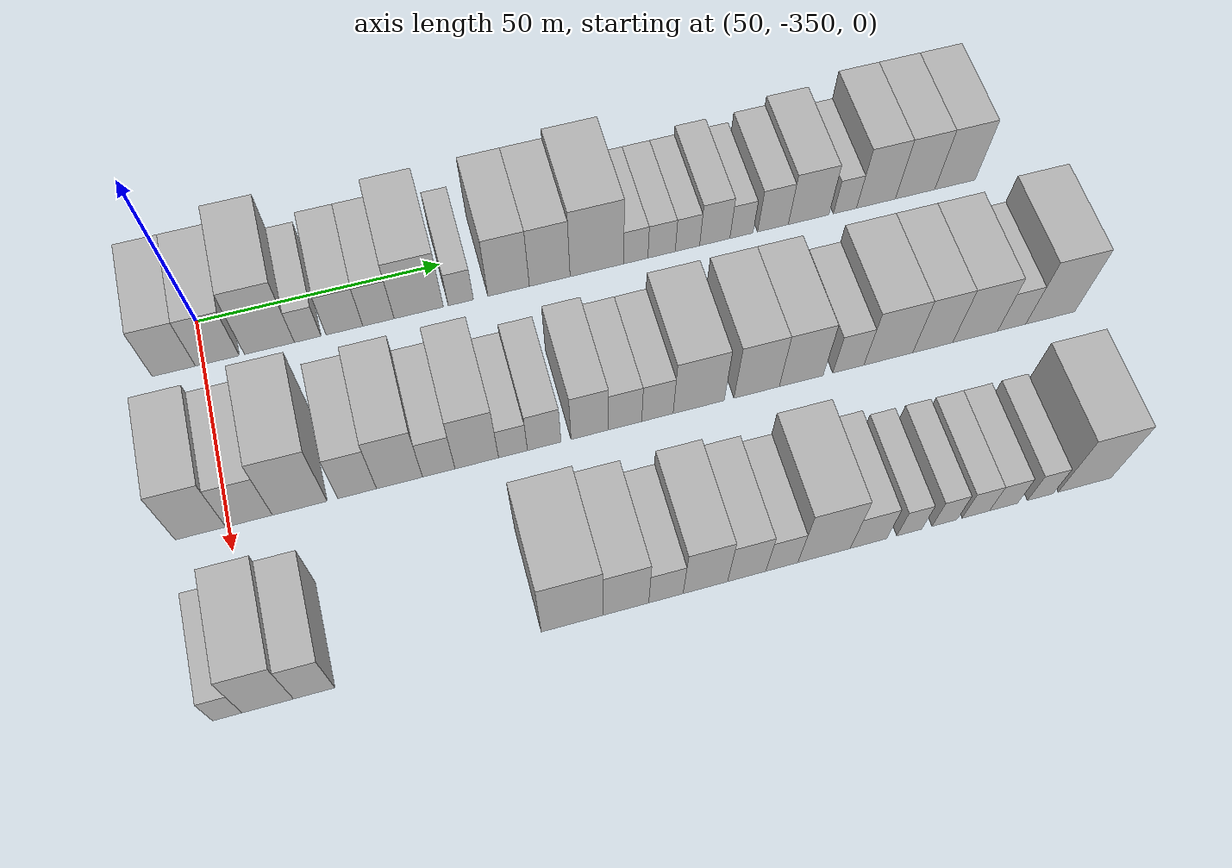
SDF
<sdf version="1.6">
 <world name="default">
  <model name="building_1">
   <static>1</static>
   <pose>50.0000 -355.7327 0 0.000000 0.000000 0.000000</pose>
   <link name="link">
    <pose>0 0 9.00 0 0 0</pose>
    <collision name="collision"><geometry><box><size>20.0000 8.5347 18.0000</size></box></geometry></collision>
    <visual name="visual">
     <cast_shadows>0</cast_shadows>
     <geometry><box><size>20.0000 8.5347 18.0000</size></box></geometry>
     <material>
      <script>
       <uri>model://HANNAS_wall/materials/scripts</uri>
       <uri>model://HANNAS_wall/materials/textures</uri>
       <name>vrc/HANNAS_wall</name>
      </script>
     </material>
    </visual>
   </link>
  </model>
  <model name="building_2">
   <static>1</static>
   <pose>50.0000 -347.1133 0 0.000000 0.000000 0.000000</pose>
   <link name="link">
    <pose>0 0 9.00 0 0 0</pose>
    <collision name="collision"><geometry><box><size>20.0000 8.7041 18.0000</size></box></geometry></collision>
    <visual name="visual">
     <cast_shadows>0</cast_shadows>
     <geometry><box><size>20.0000 8.7041 18.0000</size></box></geometry>
     <material>
      <script>
       <uri>model://HANNAS_wall/materials/scripts</uri>
       <uri>model://HANNAS_wall/materials/textures</uri>
       <name>vrc/HANNAS_wall</name>
      </script>
     </material>
    </visual>
   </link>
  </model>
  <model name="building_3">
   <static>1</static>
   <pose>50.0000 -336.7683 0 0.000000 0.000000 0.000000</pose>
   <link name="link">
    <pose>0 0 12.00 0 0 0</pose>
    <collision name="collision"><geometry><box><size>20.0000 9.9859 24.0000</size></box></geometry></collision>
    <visual name="visual">
     <cast_shadows>0</cast_shadows>
     <geometry><box><size>20.0000 9.9859 24.0000</size></box></geometry>
     <material>
      <script>
       <uri>model://HANNAS_wall/materials/scripts</uri>
       <uri>model://HANNAS_wall/materials/textures</uri>
       <name>vrc/HANNAS_wall</name>
      </script>
     </material>
    </visual>
   </link>
  </model>
  <model name="building_4">
   <static>1</static>
   <pose>50.0000 -329.0870 0 0.000000 0.000000 0.000000</pose>
   <link name="link">
    <pose>0 0 6.00 0 0 0</pose>
    <collision name="collision"><geometry><box><size>20.0000 5.3767 12.0000</size></box></geometry></collision>
    <visual name="visual">
     <cast_shadows>0</cast_shadows>
     <geometry><box><size>20.0000 5.3767 12.0000</size></box></geometry>
     <material>
      <script>
       <uri>model://HANNAS_wall/materials/scripts</uri>
       <uri>model://HANNAS_wall/materials/textures</uri>
       <name>vrc/HANNAS_wall</name>
      </script>
     </material>
    </visual>
   </link>
  </model>
  <model name="building_5">
   <static>1</static>
   <pose>50.0000 -321.6706 0 0.000000 0.000000 0.000000</pose>
   <link name="link">
    <pose>0 0 7.50 0 0 0</pose>
    <collision name="collision"><geometry><box><size>20.0000 7.4561 15.0000</size></box></geometry></collision>
    <visual name="visual">
     <cast_shadows>0</cast_shadows>
     <geometry><box><size>20.0000 7.4561 15.0000</size></box></geometry>
     <material>
      <script>
       <uri>model://HANNAS_wall/materials/scripts</uri>
       <uri>model://HANNAS_wall/materials/textures</uri>
       <name>vrc/HANNAS_wall</name>
      </script>
     </material>
    </visual>
   </link>
  </model>
  <model name="building_6">
   <static>1</static>
   <pose>50.0000 -314.7482 0 0.000000 0.000000 0.000000</pose>
   <link name="link">
    <pose>0 0 7.50 0 0 0</pose>
    <collision name="collision"><geometry><box><size>20.0000 6.3887 15.0000</size></box></geometry></collision>
    <visual name="visual">
     <cast_shadows>0</cast_shadows>
     <geometry><box><size>20.0000 6.3887 15.0000</size></box></geometry>
     <material>
      <script>
       <uri>model://HANNAS_wall/materials/scripts</uri>
       <uri>model://HANNAS_wall/materials/textures</uri>
       <name>vrc/HANNAS_wall</name>
      </script>
     </material>
    </visual>
   </link>
  </model>
  <model name="building_7">
   <static>1</static>
   <pose>50.0000 -306.4963 0 0.000000 0.000000 0.000000</pose>
   <link name="link">
    <pose>0 0 10.50 0 0 0</pose>
    <collision name="collision"><geometry><box><size>20.0000 10.1150 21.0000</size></box></geometry></collision>
    <visual name="visual">
     <cast_shadows>0</cast_shadows>
     <geometry><box><size>20.0000 10.1150 21.0000</size></box></geometry>
     <material>
      <script>
       <uri>model://HANNAS_wall/materials/scripts</uri>
       <uri>model://HANNAS_wall/materials/textures</uri>
       <name>vrc/HANNAS_wall</name>
      </script>
     </material>
    </visual>
   </link>
  </model>
  <model name="building_8">
   <static>1</static>
   <pose>50.0000 -297.8354 0 0.000000 0.000000 0.000000</pose>
   <link name="link">
    <pose>0 0 6.00 0 0 0</pose>
    <collision name="collision"><geometry><box><size>20.0000 5.2068 12.0000</size></box></geometry></collision>
    <visual name="visual">
     <cast_shadows>0</cast_shadows>
     <geometry><box><size>20.0000 5.2068 12.0000</size></box></geometry>
     <material>
      <script>
       <uri>model://HANNAS_wall/materials/scripts</uri>
       <uri>model://HANNAS_wall/materials/textures</uri>
       <name>vrc/HANNAS_wall</name>
      </script>
     </material>
    </visual>
   </link>
  </model>
  <model name="building_9">
   <static>1</static>
   <pose>50.0000 -287.9012 0 0.000000 0.000000 0.000000</pose>
   <link name="link">
    <pose>0 0 10.50 0 0 0</pose>
    <collision name="collision"><geometry><box><size>20.0000 8.6617 21.0000</size></box></geometry></collision>
    <visual name="visual">
     <cast_shadows>0</cast_shadows>
     <geometry><box><size>20.0000 8.6617 21.0000</size></box></geometry>
     <material>
      <script>
       <uri>model://HANNAS_wall/materials/scripts</uri>
       <uri>model://HANNAS_wall/materials/textures</uri>
       <name>vrc/HANNAS_wall</name>
      </script>
     </material>
    </visual>
   </link>
  </model>
  <model name="building_10">
   <static>1</static>
   <pose>50.0000 -279.2929 0 0.000000 0.000000 0.000000</pose>
   <link name="link">
    <pose>0 0 10.50 0 0 0</pose>
    <collision name="collision"><geometry><box><size>20.0000 8.5549 21.0000</size></box></geometry></collision>
    <visual name="visual">
     <cast_shadows>0</cast_shadows>
     <geometry><box><size>20.0000 8.5549 21.0000</size></box></geometry>
     <material>
      <script>
       <uri>model://HANNAS_wall/materials/scripts</uri>
       <uri>model://HANNAS_wall/materials/textures</uri>
       <name>vrc/HANNAS_wall</name>
      </script>
     </material>
    </visual>
   </link>
  </model>
  <model name="building_11">
   <static>1</static>
   <pose>50.0000 -269.3583 0 0.000000 0.000000 0.000000</pose>
   <link name="link">
    <pose>0 0 12.00 0 0 0</pose>
    <collision name="collision"><geometry><box><size>20.0000 11.3145 24.0000</size></box></geometry></collision>
    <visual name="visual">
     <cast_shadows>0</cast_shadows>
     <geometry><box><size>20.0000 11.3145 24.0000</size></box></geometry>
     <material>
      <script>
       <uri>model://HANNAS_wall/materials/scripts</uri>
       <uri>model://HANNAS_wall/materials/textures</uri>
       <name>vrc/HANNAS_wall</name>
      </script>
     </material>
    </visual>
   </link>
  </model>
  <model name="building_12">
   <static>1</static>
   <pose>50.0000 -261.0914 0 0.000000 0.000000 0.000000</pose>
   <link name="link">
    <pose>0 0 6.00 0 0 0</pose>
    <collision name="collision"><geometry><box><size>20.0000 5.2192 12.0000</size></box></geometry></collision>
    <visual name="visual">
     <cast_shadows>0</cast_shadows>
     <geometry><box><size>20.0000 5.2192 12.0000</size></box></geometry>
     <material>
      <script>
       <uri>model://HANNAS_wall/materials/scripts</uri>
       <uri>model://HANNAS_wall/materials/textures</uri>
       <name>vrc/HANNAS_wall</name>
      </script>
     </material>
    </visual>
   </link>
  </model>
  <model name="building_13">
   <static>1</static>
   <pose>50.0000 -255.5470 0 0.000000 0.000000 0.000000</pose>
   <link name="link">
    <pose>0 0 6.00 0 0 0</pose>
    <collision name="collision"><geometry><box><size>20.0000 5.8696 12.0000</size></box></geometry></collision>
    <visual name="visual">
     <cast_shadows>0</cast_shadows>
     <geometry><box><size>20.0000 5.8696 12.0000</size></box></geometry>
     <material>
      <script>
       <uri>model://HANNAS_wall/materials/scripts</uri>
       <uri>model://HANNAS_wall/materials/textures</uri>
       <name>vrc/HANNAS_wall</name>
      </script>
     </material>
    </visual>
   </link>
  </model>
  <model name="building_14">
   <static>1</static>
   <pose>50.0000 -249.9911 0 0.000000 0.000000 0.000000</pose>
   <link name="link">
    <pose>0 0 6.00 0 0 0</pose>
    <collision name="collision"><geometry><box><size>20.0000 5.2421 12.0000</size></box></geometry></collision>
    <visual name="visual">
     <cast_shadows>0</cast_shadows>
     <geometry><box><size>20.0000 5.2421 12.0000</size></box></geometry>
     <material>
      <script>
       <uri>model://HANNAS_wall/materials/scripts</uri>
       <uri>model://HANNAS_wall/materials/textures</uri>
       <name>vrc/HANNAS_wall</name>
      </script>
     </material>
    </visual>
   </link>
  </model>
  <model name="building_15">
   <static>1</static>
   <pose>50.0000 -244.0857 0 0.000000 0.000000 0.000000</pose>
   <link name="link">
    <pose>0 0 7.50 0 0 0</pose>
    <collision name="collision"><geometry><box><size>20.0000 6.5687 15.0000</size></box></geometry></collision>
    <visual name="visual">
     <cast_shadows>0</cast_shadows>
     <geometry><box><size>20.0000 6.5687 15.0000</size></box></geometry>
     <material>
      <script>
       <uri>model://HANNAS_wall/materials/scripts</uri>
       <uri>model://HANNAS_wall/materials/textures</uri>
       <name>vrc/HANNAS_wall</name>
      </script>
     </material>
    </visual>
   </link>
  </model>
  <model name="building_16">
   <static>1</static>
   <pose>50.0000 -238.2867 0 0.000000 0.000000 0.000000</pose>
   <link name="link">
    <pose>0 0 6.00 0 0 0</pose>
    <collision name="collision"><geometry><box><size>20.0000 5.0294 12.0000</size></box></geometry></collision>
    <visual name="visual">
     <cast_shadows>0</cast_shadows>
     <geometry><box><size>20.0000 5.0294 12.0000</size></box></geometry>
     <material>
      <script>
       <uri>model://HANNAS_wall/materials/scripts</uri>
       <uri>model://HANNAS_wall/materials/textures</uri>
       <name>vrc/HANNAS_wall</name>
      </script>
     </material>
    </visual>
   </link>
  </model>
  <model name="building_17">
   <static>1</static>
   <pose>50.0000 -231.4063 0 0.000000 0.000000 0.000000</pose>
   <link name="link">
    <pose>0 0 7.50 0 0 0</pose>
    <collision name="collision"><geometry><box><size>20.0000 6.7313 15.0000</size></box></geometry></collision>
    <visual name="visual">
     <cast_shadows>0</cast_shadows>
     <geometry><box><size>20.0000 6.7313 15.0000</size></box></geometry>
     <material>
      <script>
       <uri>model://HANNAS_wall/materials/scripts</uri>
       <uri>model://HANNAS_wall/materials/textures</uri>
       <name>vrc/HANNAS_wall</name>
      </script>
     </material>
    </visual>
   </link>
  </model>
  <model name="building_18">
   <static>1</static>
   <pose>50.0000 -223.5605 0 0.000000 0.000000 0.000000</pose>
   <link name="link">
    <pose>0 0 9.00 0 0 0</pose>
    <collision name="collision"><geometry><box><size>20.0000 8.9602 18.0000</size></box></geometry></collision>
    <visual name="visual">
     <cast_shadows>0</cast_shadows>
     <geometry><box><size>20.0000 8.9602 18.0000</size></box></geometry>
     <material>
      <script>
       <uri>model://HANNAS_wall/materials/scripts</uri>
       <uri>model://HANNAS_wall/materials/textures</uri>
       <name>vrc/HANNAS_wall</name>
      </script>
     </material>
    </visual>
   </link>
  </model>
  <model name="building_19">
   <static>1</static>
   <pose>50.0000 -215.5207 0 0.000000 0.000000 0.000000</pose>
   <link name="link">
    <pose>0 0 6.00 0 0 0</pose>
    <collision name="collision"><geometry><box><size>20.0000 5.1194 12.0000</size></box></geometry></collision>
    <visual name="visual">
     <cast_shadows>0</cast_shadows>
     <geometry><box><size>20.0000 5.1194 12.0000</size></box></geometry>
     <material>
      <script>
       <uri>model://HANNAS_wall/materials/scripts</uri>
       <uri>model://HANNAS_wall/materials/textures</uri>
       <name>vrc/HANNAS_wall</name>
      </script>
     </material>
    </visual>
   </link>
  </model>
  <model name="building_20">
   <static>1</static>
   <pose>50.0000 -208.6274 0 0.000000 0.000000 0.000000</pose>
   <link name="link">
    <pose>0 0 10.50 0 0 0</pose>
    <collision name="collision"><geometry><box><size>20.0000 8.6672 21.0000</size></box></geometry></collision>
    <visual name="visual">
     <cast_shadows>0</cast_shadows>
     <geometry><box><size>20.0000 8.6672 21.0000</size></box></geometry>
     <material>
      <script>
       <uri>model://HANNAS_wall/materials/scripts</uri>
       <uri>model://HANNAS_wall/materials/textures</uri>
       <name>vrc/HANNAS_wall</name>
      </script>
     </material>
    </visual>
   </link>
  </model>
  <model name="building_21">
   <static>1</static>
   <pose>50.0000 -199.8537 0 0.000000 0.000000 0.000000</pose>
   <link name="link">
    <pose>0 0 10.50 0 0 0</pose>
    <collision name="collision"><geometry><box><size>20.0000 8.8801 21.0000</size></box></geometry></collision>
    <visual name="visual">
     <cast_shadows>0</cast_shadows>
     <geometry><box><size>20.0000 8.8801 21.0000</size></box></geometry>
     <material>
      <script>
       <uri>model://HANNAS_wall/materials/scripts</uri>
       <uri>model://HANNAS_wall/materials/textures</uri>
       <name>vrc/HANNAS_wall</name>
      </script>
     </material>
    </visual>
   </link>
  </model>
  <model name="building_22">
   <static>1</static>
   <pose>50.0000 -190.8457 0 0.000000 0.000000 0.000000</pose>
   <link name="link">
    <pose>0 0 10.50 0 0 0</pose>
    <collision name="collision"><geometry><box><size>20.0000 9.1359 21.0000</size></box></geometry></collision>
    <visual name="visual">
     <cast_shadows>0</cast_shadows>
     <geometry><box><size>20.0000 9.1359 21.0000</size></box></geometry>
     <material>
      <script>
       <uri>model://HANNAS_wall/materials/scripts</uri>
       <uri>model://HANNAS_wall/materials/textures</uri>
       <name>vrc/HANNAS_wall</name>
      </script>
     </material>
    </visual>
   </link>
  </model>
  <model name="building_78">
   <static>1</static>
   <pose>85.0000 -355.2807 0 0.000000 0.000000 0.000000</pose>
   <link name="link">
    <pose>0 0 10.50 0 0 0</pose>
    <collision name="collision"><geometry><box><size>20.0000 9.4386 21.0000</size></box></geometry></collision>
    <visual name="visual">
     <cast_shadows>0</cast_shadows>
     <geometry><box><size>20.0000 9.4386 21.0000</size></box></geometry>
     <material>
      <script>
       <uri>model://HANNAS_wall/materials/scripts</uri>
       <uri>model://HANNAS_wall/materials/textures</uri>
       <name>vrc/HANNAS_wall</name>
      </script>
     </material>
    </visual>
   </link>
  </model>
  <model name="building_79">
   <static>1</static>
   <pose>85.0000 -346.1865 0 0.000000 0.000000 0.000000</pose>
   <link name="link">
    <pose>0 0 9.00 0 0 0</pose>
    <collision name="collision"><geometry><box><size>20.0000 8.7498 18.0000</size></box></geometry></collision>
    <visual name="visual">
     <cast_shadows>0</cast_shadows>
     <geometry><box><size>20.0000 8.7498 18.0000</size></box></geometry>
     <material>
      <script>
       <uri>model://HANNAS_wall/materials/scripts</uri>
       <uri>model://HANNAS_wall/materials/textures</uri>
       <name>vrc/HANNAS_wall</name>
      </script>
     </material>
    </visual>
   </link>
  </model>
  <model name="building_80">
   <static>1</static>
   <pose>85.0000 -336.6284 0 0.000000 0.000000 0.000000</pose>
   <link name="link">
    <pose>0 0 12.00 0 0 0</pose>
    <collision name="collision"><geometry><box><size>20.0000 10.3663 24.0000</size></box></geometry></collision>
    <visual name="visual">
     <cast_shadows>0</cast_shadows>
     <geometry><box><size>20.0000 10.3663 24.0000</size></box></geometry>
     <material>
      <script>
       <uri>model://HANNAS_wall/materials/scripts</uri>
       <uri>model://HANNAS_wall/materials/textures</uri>
       <name>vrc/HANNAS_wall</name>
      </script>
     </material>
    </visual>
   </link>
  </model>
  <model name="building_81">
   <static>1</static>
   <pose>85.0000 -325.7325 0 0.000000 0.000000 0.000000</pose>
   <link name="link">
    <pose>0 0 9.00 0 0 0</pose>
    <collision name="collision"><geometry><box><size>20.0000 7.4255 18.0000</size></box></geometry></collision>
    <visual name="visual">
     <cast_shadows>0</cast_shadows>
     <geometry><box><size>20.0000 7.4255 18.0000</size></box></geometry>
     <material>
      <script>
       <uri>model://HANNAS_wall/materials/scripts</uri>
       <uri>model://HANNAS_wall/materials/textures</uri>
       <name>vrc/HANNAS_wall</name>
      </script>
     </material>
    </visual>
   </link>
  </model>
  <model name="building_82">
   <static>1</static>
   <pose>85.0000 -317.5813 0 0.000000 0.000000 0.000000</pose>
   <link name="link">
    <pose>0 0 10.50 0 0 0</pose>
    <collision name="collision"><geometry><box><size>20.0000 8.8770 21.0000</size></box></geometry></collision>
    <visual name="visual">
     <cast_shadows>0</cast_shadows>
     <geometry><box><size>20.0000 8.8770 21.0000</size></box></geometry>
     <material>
      <script>
       <uri>model://HANNAS_wall/materials/scripts</uri>
       <uri>model://HANNAS_wall/materials/textures</uri>
       <name>vrc/HANNAS_wall</name>
      </script>
     </material>
    </visual>
   </link>
  </model>
  <model name="building_83">
   <static>1</static>
   <pose>85.0000 -309.9876 0 0.000000 0.000000 0.000000</pose>
   <link name="link">
    <pose>0 0 7.50 0 0 0</pose>
    <collision name="collision"><geometry><box><size>20.0000 6.3103 15.0000</size></box></geometry></collision>
    <visual name="visual">
     <cast_shadows>0</cast_shadows>
     <geometry><box><size>20.0000 6.3103 15.0000</size></box></geometry>
     <material>
      <script>
       <uri>model://HANNAS_wall/materials/scripts</uri>
       <uri>model://HANNAS_wall/materials/textures</uri>
       <name>vrc/HANNAS_wall</name>
      </script>
     </material>
    </visual>
   </link>
  </model>
  <model name="building_84">
   <static>1</static>
   <pose>85.0000 -302.5805 0 0.000000 0.000000 0.000000</pose>
   <link name="link">
    <pose>0 0 10.50 0 0 0</pose>
    <collision name="collision"><geometry><box><size>20.0000 8.5039 21.0000</size></box></geometry></collision>
    <visual name="visual">
     <cast_shadows>0</cast_shadows>
     <geometry><box><size>20.0000 8.5039 21.0000</size></box></geometry>
     <material>
      <script>
       <uri>model://HANNAS_wall/materials/scripts</uri>
       <uri>model://HANNAS_wall/materials/textures</uri>
       <name>vrc/HANNAS_wall</name>
      </script>
     </material>
    </visual>
   </link>
  </model>
  <model name="building_85">
   <static>1</static>
   <pose>85.0000 -295.4867 0 0.000000 0.000000 0.000000</pose>
   <link name="link">
    <pose>0 0 6.00 0 0 0</pose>
    <collision name="collision"><geometry><box><size>20.0000 5.6836 12.0000</size></box></geometry></collision>
    <visual name="visual">
     <cast_shadows>0</cast_shadows>
     <geometry><box><size>20.0000 5.6836 12.0000</size></box></geometry>
     <material>
      <script>
       <uri>model://HANNAS_wall/materials/scripts</uri>
       <uri>model://HANNAS_wall/materials/textures</uri>
       <name>vrc/HANNAS_wall</name>
      </script>
     </material>
    </visual>
   </link>
  </model>
  <model name="building_86">
   <static>1</static>
   <pose>85.0000 -289.3375 0 0.000000 0.000000 0.000000</pose>
   <link name="link">
    <pose>0 0 7.50 0 0 0</pose>
    <collision name="collision"><geometry><box><size>20.0000 6.6150 15.0000</size></box></geometry></collision>
    <visual name="visual">
     <cast_shadows>0</cast_shadows>
     <geometry><box><size>20.0000 6.6150 15.0000</size></box></geometry>
     <material>
      <script>
       <uri>model://HANNAS_wall/materials/scripts</uri>
       <uri>model://HANNAS_wall/materials/textures</uri>
       <name>vrc/HANNAS_wall</name>
      </script>
     </material>
    </visual>
   </link>
  </model>
  <model name="building_87">
   <static>1</static>
   <pose>85.0000 -280.2895 0 0.000000 0.000000 0.000000</pose>
   <link name="link">
    <pose>0 0 9.00 0 0 0</pose>
    <collision name="collision"><geometry><box><size>20.0000 7.4811 18.0000</size></box></geometry></collision>
    <visual name="visual">
     <cast_shadows>0</cast_shadows>
     <geometry><box><size>20.0000 7.4811 18.0000</size></box></geometry>
     <material>
      <script>
       <uri>model://HANNAS_wall/materials/scripts</uri>
       <uri>model://HANNAS_wall/materials/textures</uri>
       <name>vrc/HANNAS_wall</name>
      </script>
     </material>
    </visual>
   </link>
  </model>
  <model name="building_88">
   <static>1</static>
   <pose>85.0000 -273.2208 0 0.000000 0.000000 0.000000</pose>
   <link name="link">
    <pose>0 0 7.50 0 0 0</pose>
    <collision name="collision"><geometry><box><size>20.0000 6.6563 15.0000</size></box></geometry></collision>
    <visual name="visual">
     <cast_shadows>0</cast_shadows>
     <geometry><box><size>20.0000 6.6563 15.0000</size></box></geometry>
     <material>
      <script>
       <uri>model://HANNAS_wall/materials/scripts</uri>
       <uri>model://HANNAS_wall/materials/textures</uri>
       <name>vrc/HANNAS_wall</name>
      </script>
     </material>
    </visual>
   </link>
  </model>
  <model name="building_89">
   <static>1</static>
   <pose>85.0000 -266.7228 0 0.000000 0.000000 0.000000</pose>
   <link name="link">
    <pose>0 0 7.50 0 0 0</pose>
    <collision name="collision"><geometry><box><size>20.0000 6.3396 15.0000</size></box></geometry></collision>
    <visual name="visual">
     <cast_shadows>0</cast_shadows>
     <geometry><box><size>20.0000 6.3396 15.0000</size></box></geometry>
     <material>
      <script>
       <uri>model://HANNAS_wall/materials/scripts</uri>
       <uri>model://HANNAS_wall/materials/textures</uri>
       <name>vrc/HANNAS_wall</name>
      </script>
     </material>
    </visual>
   </link>
  </model>
  <model name="building_90">
   <static>1</static>
   <pose>85.0000 -258.3570 0 0.000000 0.000000 0.000000</pose>
   <link name="link">
    <pose>0 0 10.50 0 0 0</pose>
    <collision name="collision"><geometry><box><size>20.0000 10.3920 21.0000</size></box></geometry></collision>
    <visual name="visual">
     <cast_shadows>0</cast_shadows>
     <geometry><box><size>20.0000 10.3920 21.0000</size></box></geometry>
     <material>
      <script>
       <uri>model://HANNAS_wall/materials/scripts</uri>
       <uri>model://HANNAS_wall/materials/textures</uri>
       <name>vrc/HANNAS_wall</name>
      </script>
     </material>
    </visual>
   </link>
  </model>
  <model name="building_91">
   <static>1</static>
   <pose>85.0000 -246.5008 0 0.000000 0.000000 0.000000</pose>
   <link name="link">
    <pose>0 0 10.50 0 0 0</pose>
    <collision name="collision"><geometry><box><size>20.0000 9.3204 21.0000</size></box></geometry></collision>
    <visual name="visual">
     <cast_shadows>0</cast_shadows>
     <geometry><box><size>20.0000 9.3204 21.0000</size></box></geometry>
     <material>
      <script>
       <uri>model://HANNAS_wall/materials/scripts</uri>
       <uri>model://HANNAS_wall/materials/textures</uri>
       <name>vrc/HANNAS_wall</name>
      </script>
     </material>
    </visual>
   </link>
  </model>
  <model name="building_92">
   <static>1</static>
   <pose>85.0000 -237.2859 0 0.000000 0.000000 0.000000</pose>
   <link name="link">
    <pose>0 0 10.50 0 0 0</pose>
    <collision name="collision"><geometry><box><size>20.0000 9.1093 21.0000</size></box></geometry></collision>
    <visual name="visual">
     <cast_shadows>0</cast_shadows>
     <geometry><box><size>20.0000 9.1093 21.0000</size></box></geometry>
     <material>
      <script>
       <uri>model://HANNAS_wall/materials/scripts</uri>
       <uri>model://HANNAS_wall/materials/textures</uri>
       <name>vrc/HANNAS_wall</name>
      </script>
     </material>
    </visual>
   </link>
  </model>
  <model name="building_93">
   <static>1</static>
   <pose>85.0000 -227.4811 0 0.000000 0.000000 0.000000</pose>
   <link name="link">
    <pose>0 0 7.50 0 0 0</pose>
    <collision name="collision"><geometry><box><size>20.0000 6.5005 15.0000</size></box></geometry></collision>
    <visual name="visual">
     <cast_shadows>0</cast_shadows>
     <geometry><box><size>20.0000 6.5005 15.0000</size></box></geometry>
     <material>
      <script>
       <uri>model://HANNAS_wall/materials/scripts</uri>
       <uri>model://HANNAS_wall/materials/textures</uri>
       <name>vrc/HANNAS_wall</name>
      </script>
     </material>
    </visual>
   </link>
  </model>
  <model name="building_94">
   <static>1</static>
   <pose>85.0000 -219.0801 0 0.000000 0.000000 0.000000</pose>
   <link name="link">
    <pose>0 0 10.50 0 0 0</pose>
    <collision name="collision"><geometry><box><size>20.0000 10.3015 21.0000</size></box></geometry></collision>
    <visual name="visual">
     <cast_shadows>0</cast_shadows>
     <geometry><box><size>20.0000 10.3015 21.0000</size></box></geometry>
     <material>
      <script>
       <uri>model://HANNAS_wall/materials/scripts</uri>
       <uri>model://HANNAS_wall/materials/textures</uri>
       <name>vrc/HANNAS_wall</name>
      </script>
     </material>
    </visual>
   </link>
  </model>
  <model name="building_95">
   <static>1</static>
   <pose>85.0000 -209.6947 0 0.000000 0.000000 0.000000</pose>
   <link name="link">
    <pose>0 0 10.50 0 0 0</pose>
    <collision name="collision"><geometry><box><size>20.0000 8.4692 21.0000</size></box></geometry></collision>
    <visual name="visual">
     <cast_shadows>0</cast_shadows>
     <geometry><box><size>20.0000 8.4692 21.0000</size></box></geometry>
     <material>
      <script>
       <uri>model://HANNAS_wall/materials/scripts</uri>
       <uri>model://HANNAS_wall/materials/textures</uri>
       <name>vrc/HANNAS_wall</name>
      </script>
     </material>
    </visual>
   </link>
  </model>
  <model name="building_96">
   <static>1</static>
   <pose>85.0000 -200.6352 0 0.000000 0.000000 0.000000</pose>
   <link name="link">
    <pose>0 0 10.50 0 0 0</pose>
    <collision name="collision"><geometry><box><size>20.0000 9.6499 21.0000</size></box></geometry></collision>
    <visual name="visual">
     <cast_shadows>0</cast_shadows>
     <geometry><box><size>20.0000 9.6499 21.0000</size></box></geometry>
     <material>
      <script>
       <uri>model://HANNAS_wall/materials/scripts</uri>
       <uri>model://HANNAS_wall/materials/textures</uri>
       <name>vrc/HANNAS_wall</name>
      </script>
     </material>
    </visual>
   </link>
  </model>
  <model name="building_97">
   <static>1</static>
   <pose>85.0000 -192.7674 0 0.000000 0.000000 0.000000</pose>
   <link name="link">
    <pose>0 0 7.50 0 0 0</pose>
    <collision name="collision"><geometry><box><size>20.0000 6.0856 15.0000</size></box></geometry></collision>
    <visual name="visual">
     <cast_shadows>0</cast_shadows>
     <geometry><box><size>20.0000 6.0856 15.0000</size></box></geometry>
     <material>
      <script>
       <uri>model://HANNAS_wall/materials/scripts</uri>
       <uri>model://HANNAS_wall/materials/textures</uri>
       <name>vrc/HANNAS_wall</name>
      </script>
     </material>
    </visual>
   </link>
  </model>
  <model name="building_98">
   <static>1</static>
   <pose>85.0000 -184.4051 0 0.000000 0.000000 0.000000</pose>
   <link name="link">
    <pose>0 0 12.00 0 0 0</pose>
    <collision name="collision"><geometry><box><size>20.0000 10.6390 24.0000</size></box></geometry></collision>
    <visual name="visual">
     <cast_shadows>0</cast_shadows>
     <geometry><box><size>20.0000 10.6390 24.0000</size></box></geometry>
     <material>
      <script>
       <uri>model://HANNAS_wall/materials/scripts</uri>
       <uri>model://HANNAS_wall/materials/textures</uri>
       <name>vrc/HANNAS_wall</name>
      </script>
     </material>
    </visual>
   </link>
  </model>
  <model name="building_161">
   <static>1</static>
   <pose>120.0000 -355.4141 0 0.000000 0.000000 0.000000</pose>
   <link name="link">
    <pose>0 0 6.00 0 0 0</pose>
    <collision name="collision"><geometry><box><size>20.0000 5.1717 12.0000</size></box></geometry></collision>
    <visual name="visual">
     <cast_shadows>0</cast_shadows>
     <geometry><box><size>20.0000 5.1717 12.0000</size></box></geometry>
     <material>
      <script>
       <uri>model://HANNAS_wall/materials/scripts</uri>
       <uri>model://HANNAS_wall/materials/textures</uri>
       <name>vrc/HANNAS_wall</name>
      </script>
     </material>
    </visual>
   </link>
  </model>
  <model name="building_162">
   <static>1</static>
   <pose>120.0000 -348.2744 0 0.000000 0.000000 0.000000</pose>
   <link name="link">
    <pose>0 0 10.50 0 0 0</pose>
    <collision name="collision"><geometry><box><size>20.0000 9.1077 21.0000</size></box></geometry></collision>
    <visual name="visual">
     <cast_shadows>0</cast_shadows>
     <geometry><box><size>20.0000 9.1077 21.0000</size></box></geometry>
     <material>
      <script>
       <uri>model://HANNAS_wall/materials/scripts</uri>
       <uri>model://HANNAS_wall/materials/textures</uri>
       <name>vrc/HANNAS_wall</name>
      </script>
     </material>
    </visual>
   </link>
  </model>
  <model name="building_163">
   <static>1</static>
   <pose>120.0000 -340.0384 0 0.000000 0.000000 0.000000</pose>
   <link name="link">
    <pose>0 0 9.00 0 0 0</pose>
    <collision name="collision"><geometry><box><size>20.0000 7.3644 18.0000</size></box></geometry></collision>
    <visual name="visual">
     <cast_shadows>0</cast_shadows>
     <geometry><box><size>20.0000 7.3644 18.0000</size></box></geometry>
     <material>
      <script>
       <uri>model://HANNAS_wall/materials/scripts</uri>
       <uri>model://HANNAS_wall/materials/textures</uri>
       <name>vrc/HANNAS_wall</name>
      </script>
     </material>
    </visual>
   </link>
  </model>
  <model name="building_164">
   <static>1</static>
   <pose>120.0000 -292.9990 0 0.000000 0.000000 0.000000</pose>
   <link name="link">
    <pose>0 0 12.00 0 0 0</pose>
    <collision name="collision"><geometry><box><size>20.0000 11.5715 24.0000</size></box></geometry></collision>
    <visual name="visual">
     <cast_shadows>0</cast_shadows>
     <geometry><box><size>20.0000 11.5715 24.0000</size></box></geometry>
     <material>
      <script>
       <uri>model://HANNAS_wall/materials/scripts</uri>
       <uri>model://HANNAS_wall/materials/textures</uri>
       <name>vrc/HANNAS_wall</name>
      </script>
     </material>
    </visual>
   </link>
  </model>
  <model name="building_165">
   <static>1</static>
   <pose>120.0000 -282.9363 0 0.000000 0.000000 0.000000</pose>
   <link name="link">
    <pose>0 0 10.50 0 0 0</pose>
    <collision name="collision"><geometry><box><size>20.0000 8.5540 21.0000</size></box></geometry></collision>
    <visual name="visual">
     <cast_shadows>0</cast_shadows>
     <geometry><box><size>20.0000 8.5540 21.0000</size></box></geometry>
     <material>
      <script>
       <uri>model://HANNAS_wall/materials/scripts</uri>
       <uri>model://HANNAS_wall/materials/textures</uri>
       <name>vrc/HANNAS_wall</name>
      </script>
     </material>
    </visual>
   </link>
  </model>
  <model name="building_166">
   <static>1</static>
   <pose>120.0000 -275.4017 0 0.000000 0.000000 0.000000</pose>
   <link name="link">
    <pose>0 0 7.50 0 0 0</pose>
    <collision name="collision"><geometry><box><size>20.0000 6.5151 15.0000</size></box></geometry></collision>
    <visual name="visual">
     <cast_shadows>0</cast_shadows>
     <geometry><box><size>20.0000 6.5151 15.0000</size></box></geometry>
     <material>
      <script>
       <uri>model://HANNAS_wall/materials/scripts</uri>
       <uri>model://HANNAS_wall/materials/textures</uri>
       <name>vrc/HANNAS_wall</name>
      </script>
     </material>
    </visual>
   </link>
  </model>
  <model name="building_167">
   <static>1</static>
   <pose>120.0000 -267.8918 0 0.000000 0.000000 0.000000</pose>
   <link name="link">
    <pose>0 0 10.50 0 0 0</pose>
    <collision name="collision"><geometry><box><size>20.0000 8.5046 21.0000</size></box></geometry></collision>
    <visual name="visual">
     <cast_shadows>0</cast_shadows>
     <geometry><box><size>20.0000 8.5046 21.0000</size></box></geometry>
     <material>
      <script>
       <uri>model://HANNAS_wall/materials/scripts</uri>
       <uri>model://HANNAS_wall/materials/textures</uri>
       <name>vrc/HANNAS_wall</name>
      </script>
     </material>
    </visual>
   </link>
  </model>
  <model name="building_168">
   <static>1</static>
   <pose>120.0000 -259.9532 0 0.000000 0.000000 0.000000</pose>
   <link name="link">
    <pose>0 0 9.00 0 0 0</pose>
    <collision name="collision"><geometry><box><size>20.0000 7.3725 18.0000</size></box></geometry></collision>
    <visual name="visual">
     <cast_shadows>0</cast_shadows>
     <geometry><box><size>20.0000 7.3725 18.0000</size></box></geometry>
     <material>
      <script>
       <uri>model://HANNAS_wall/materials/scripts</uri>
       <uri>model://HANNAS_wall/materials/textures</uri>
       <name>vrc/HANNAS_wall</name>
      </script>
     </material>
    </visual>
   </link>
  </model>
  <model name="building_169">
   <static>1</static>
   <pose>120.0000 -253.1664 0 0.000000 0.000000 0.000000</pose>
   <link name="link">
    <pose>0 0 7.50 0 0 0</pose>
    <collision name="collision"><geometry><box><size>20.0000 6.2011 15.0000</size></box></geometry></collision>
    <visual name="visual">
     <cast_shadows>0</cast_shadows>
     <geometry><box><size>20.0000 6.2011 15.0000</size></box></geometry>
     <material>
      <script>
       <uri>model://HANNAS_wall/materials/scripts</uri>
       <uri>model://HANNAS_wall/materials/textures</uri>
       <name>vrc/HANNAS_wall</name>
      </script>
     </material>
    </visual>
   </link>
  </model>
  <model name="building_170">
   <static>1</static>
   <pose>120.0000 -244.9382 0 0.000000 0.000000 0.000000</pose>
   <link name="link">
    <pose>0 0 12.00 0 0 0</pose>
    <collision name="collision"><geometry><box><size>20.0000 10.2555 24.0000</size></box></geometry></collision>
    <visual name="visual">
     <cast_shadows>0</cast_shadows>
     <geometry><box><size>20.0000 10.2555 24.0000</size></box></geometry>
     <material>
      <script>
       <uri>model://HANNAS_wall/materials/scripts</uri>
       <uri>model://HANNAS_wall/materials/textures</uri>
       <name>vrc/HANNAS_wall</name>
      </script>
     </material>
    </visual>
   </link>
  </model>
  <model name="building_171">
   <static>1</static>
   <pose>120.0000 -236.2132 0 0.000000 0.000000 0.000000</pose>
   <link name="link">
    <pose>0 0 7.50 0 0 0</pose>
    <collision name="collision"><geometry><box><size>20.0000 7.1944 15.0000</size></box></geometry></collision>
    <visual name="visual">
     <cast_shadows>0</cast_shadows>
     <geometry><box><size>20.0000 7.1944 15.0000</size></box></geometry>
     <material>
      <script>
       <uri>model://HANNAS_wall/materials/scripts</uri>
       <uri>model://HANNAS_wall/materials/textures</uri>
       <name>vrc/HANNAS_wall</name>
      </script>
     </material>
    </visual>
   </link>
  </model>
  <model name="building_172">
   <static>1</static>
   <pose>120.0000 -228.1234 0 0.000000 0.000000 0.000000</pose>
   <link name="link">
    <pose>0 0 6.00 0 0 0</pose>
    <collision name="collision"><geometry><box><size>20.0000 4.9852 12.0000</size></box></geometry></collision>
    <visual name="visual">
     <cast_shadows>0</cast_shadows>
     <geometry><box><size>20.0000 4.9852 12.0000</size></box></geometry>
     <material>
      <script>
       <uri>model://HANNAS_wall/materials/scripts</uri>
       <uri>model://HANNAS_wall/materials/textures</uri>
       <name>vrc/HANNAS_wall</name>
      </script>
     </material>
    </visual>
   </link>
  </model>
  <model name="building_173">
   <static>1</static>
   <pose>120.0000 -221.1182 0 0.000000 0.000000 0.000000</pose>
   <link name="link">
    <pose>0 0 6.00 0 0 0</pose>
    <collision name="collision"><geometry><box><size>20.0000 5.0253 12.0000</size></box></geometry></collision>
    <visual name="visual">
     <cast_shadows>0</cast_shadows>
     <geometry><box><size>20.0000 5.0253 12.0000</size></box></geometry>
     <material>
      <script>
       <uri>model://HANNAS_wall/materials/scripts</uri>
       <uri>model://HANNAS_wall/materials/textures</uri>
       <name>vrc/HANNAS_wall</name>
      </script>
     </material>
    </visual>
   </link>
  </model>
  <model name="building_174">
   <static>1</static>
   <pose>120.0000 -214.8461 0 0.000000 0.000000 0.000000</pose>
   <link name="link">
    <pose>0 0 6.00 0 0 0</pose>
    <collision name="collision"><geometry><box><size>20.0000 5.5189 12.0000</size></box></geometry></collision>
    <visual name="visual">
     <cast_shadows>0</cast_shadows>
     <geometry><box><size>20.0000 5.5189 12.0000</size></box></geometry>
     <material>
      <script>
       <uri>model://HANNAS_wall/materials/scripts</uri>
       <uri>model://HANNAS_wall/materials/textures</uri>
       <name>vrc/HANNAS_wall</name>
      </script>
     </material>
    </visual>
   </link>
  </model>
  <model name="building_175">
   <static>1</static>
   <pose>120.0000 -209.2546 0 0.000000 0.000000 0.000000</pose>
   <link name="link">
    <pose>0 0 6.00 0 0 0</pose>
    <collision name="collision"><geometry><box><size>20.0000 5.6639 12.0000</size></box></geometry></collision>
    <visual name="visual">
     <cast_shadows>0</cast_shadows>
     <geometry><box><size>20.0000 5.6639 12.0000</size></box></geometry>
     <material>
      <script>
       <uri>model://HANNAS_wall/materials/scripts</uri>
       <uri>model://HANNAS_wall/materials/textures</uri>
       <name>vrc/HANNAS_wall</name>
      </script>
     </material>
    </visual>
   </link>
  </model>
  <model name="building_176">
   <static>1</static>
   <pose>120.0000 -201.7892 0 0.000000 0.000000 0.000000</pose>
   <link name="link">
    <pose>0 0 6.00 0 0 0</pose>
    <collision name="collision"><geometry><box><size>20.0000 5.2669 12.0000</size></box></geometry></collision>
    <visual name="visual">
     <cast_shadows>0</cast_shadows>
     <geometry><box><size>20.0000 5.2669 12.0000</size></box></geometry>
     <material>
      <script>
       <uri>model://HANNAS_wall/materials/scripts</uri>
       <uri>model://HANNAS_wall/materials/textures</uri>
       <name>vrc/HANNAS_wall</name>
      </script>
     </material>
    </visual>
   </link>
  </model>
  <model name="building_177">
   <static>1</static>
   <pose>120.0000 -192.7416 0 0.000000 0.000000 0.000000</pose>
   <link name="link">
    <pose>0 0 12.00 0 0 0</pose>
    <collision name="collision"><geometry><box><size>20.0000 10.8284 24.0000</size></box></geometry></collision>
    <visual name="visual">
     <cast_shadows>0</cast_shadows>
     <geometry><box><size>20.0000 10.8284 24.0000</size></box></geometry>
     <material>
      <script>
       <uri>model://HANNAS_wall/materials/scripts</uri>
       <uri>model://HANNAS_wall/materials/textures</uri>
       <name>vrc/HANNAS_wall</name>
      </script>
     </material>
    </visual>
   </link>
  </model>
 </world>
</sdf>
